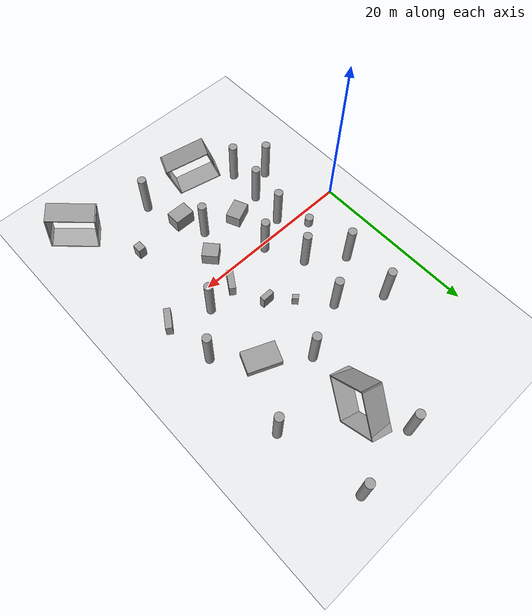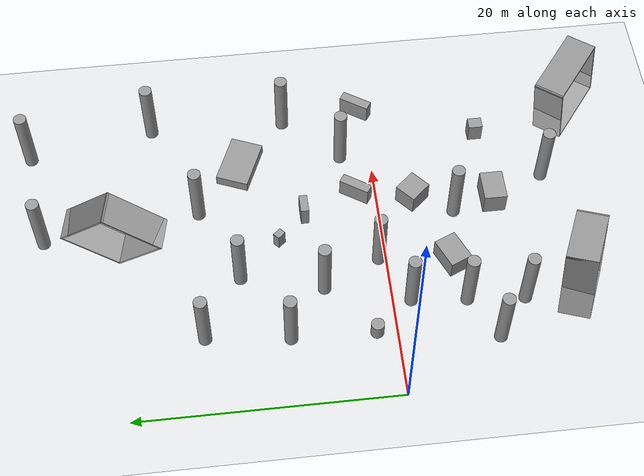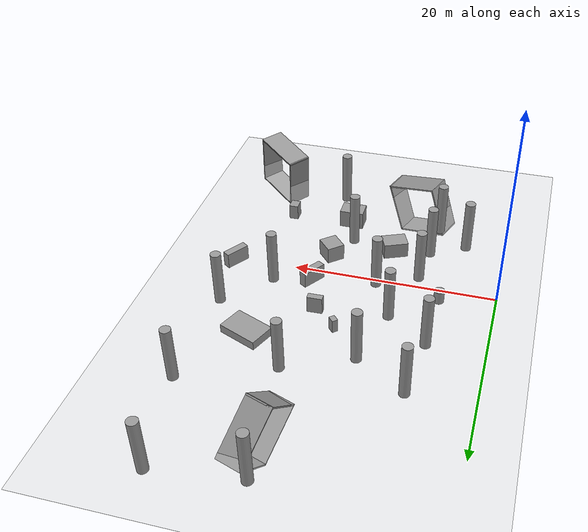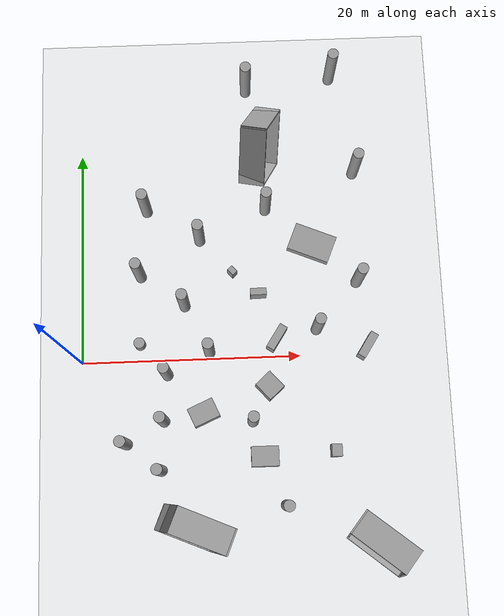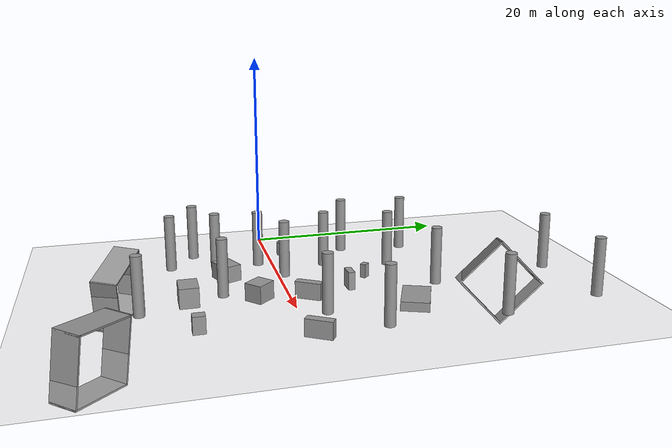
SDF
<sdf version="1.6">
 <world name="default">
  <model name="ground_plane">
   <static>1</static>
   <link name="link">
    <collision name="collision">
     <geometry><plane><normal>0 0 1</normal><size>100 100</size></plane></geometry>
     <surface><friction><ode><mu>100</mu><mu2>50</mu2></ode></friction></surface>
    </collision>
    <visual name="visual">
     <cast_shadows>0</cast_shadows>
     <geometry><plane><normal>0 0 1</normal><size>100 100</size></plane></geometry>
     <material>
      <script><uri>file://media/materials/scripts/gazebo.material</uri><name>Gazebo/Grey</name></script>
     </material>
    </visual>
   </link>
  </model>
  <model name="unit_cylinder">
   <pose>5.3177 1.52841 0.661765 0 -0 0.001729</pose>
   <link name="link">
    <inertial>
     <mass>1</mass>
     <inertia><ixx>0.145833</ixx><ixy>0</ixy><ixz>0</ixz><iyy>0.145833</iyy><iyz>0</iyz><izz>0.125</izz></inertia>
    </inertial>
    <collision name="collision">
     <geometry><cylinder><radius>0.5</radius><length>1.32353</length></cylinder></geometry>
    </collision>
    <visual name="visual">
     <geometry><cylinder><radius>0.5</radius><length>1.32353</length></cylinder></geometry>
     <material>
      <script><name>Gazebo/Grey</name><uri>file://media/materials/scripts/gazebo.material</uri></script>
     </material>
    </visual>
   </link>
  </model>
  <model name="unit_cylinder_clone_1">
   <pose>7.38389 -5.59554 2.75253 0 -0 0.004343</pose>
   <link name="link">
    <inertial>
     <mass>1</mass>
     <inertia><ixx>0.145833</ixx><ixy>0</ixy><ixz>0</ixz><iyy>0.145833</iyy><iyz>0</iyz><izz>0.125</izz></inertia>
    </inertial>
    <collision name="collision">
     <geometry><cylinder><radius>0.5</radius><length>5.50507</length></cylinder></geometry>
    </collision>
    <visual name="visual">
     <geometry><cylinder><radius>0.5</radius><length>5.50507</length></cylinder></geometry>
     <material>
      <script><name>Gazebo/Grey</name><uri>file://media/materials/scripts/gazebo.material</uri></script>
     </material>
    </visual>
   </link>
  </model>
  <model name="unit_cylinder_clone_2">
   <pose>9.49308 5.0003 2.75253 0 -0 0.004498</pose>
   <link name="link">
    <inertial>
     <mass>1</mass>
     <inertia><ixx>0.145833</ixx><ixy>0</ixy><ixz>0</ixz><iyy>0.145833</iyy><iyz>0</iyz><izz>0.125</izz></inertia>
    </inertial>
    <collision name="collision">
     <geometry><cylinder><radius>0.5</radius><length>5.50507</length></cylinder></geometry>
    </collision>
    <visual name="visual">
     <geometry><cylinder><radius>0.5</radius><length>5.50507</length></cylinder></geometry>
     <material>
      <script><name>Gazebo/Grey</name><uri>file://media/materials/scripts/gazebo.material</uri></script>
     </material>
    </visual>
   </link>
  </model>
  <model name="unit_cylinder_clone_3">
   <pose>7.77783 -1.37946 2.75253 0 -0 0.00474</pose>
   <link name="link">
    <inertial>
     <mass>1</mass>
     <inertia><ixx>0.145833</ixx><ixy>0</ixy><ixz>0</ixz><iyy>0.145833</iyy><iyz>0</iyz><izz>0.125</izz></inertia>
    </inertial>
    <collision name="collision">
     <geometry><cylinder><radius>0.5</radius><length>5.50507</length></cylinder></geometry>
    </collision>
    <visual name="visual">
     <geometry><cylinder><radius>0.5</radius><length>5.50507</length></cylinder></geometry>
     <material>
      <script><name>Gazebo/Grey</name><uri>file://media/materials/scripts/gazebo.material</uri></script>
     </material>
    </visual>
   </link>
  </model>
  <model name="unit_cylinder_clone_4">
   <pose>3.98651 -7.52504 2.75253 0 -0 0.004053</pose>
   <link name="link">
    <inertial>
     <mass>1</mass>
     <inertia><ixx>0.145833</ixx><ixy>0</ixy><ixz>0</ixz><iyy>0.145833</iyy><iyz>0</iyz><izz>0.125</izz></inertia>
    </inertial>
    <collision name="collision">
     <geometry><cylinder><radius>0.5</radius><length>5.50507</length></cylinder></geometry>
    </collision>
    <visual name="visual">
     <geometry><cylinder><radius>0.5</radius><length>5.50507</length></cylinder></geometry>
     <material>
      <script><name>Gazebo/Grey</name><uri>file://media/materials/scripts/gazebo.material</uri></script>
     </material>
    </visual>
   </link>
  </model>
  <model name="unit_cylinder_clone_5">
   <pose>5.48129 7.9192 2.75253 0 -0 0.004331</pose>
   <link name="link">
    <inertial>
     <mass>1</mass>
     <inertia><ixx>0.145833</ixx><ixy>0</ixy><ixz>0</ixz><iyy>0.145833</iyy><iyz>0</iyz><izz>0.125</izz></inertia>
    </inertial>
    <collision name="collision">
     <geometry><cylinder><radius>0.5</radius><length>5.50507</length></cylinder></geometry>
    </collision>
    <visual name="visual">
     <geometry><cylinder><radius>0.5</radius><length>5.50507</length></cylinder></geometry>
     <material>
      <script><name>Gazebo/Grey</name><uri>file://media/materials/scripts/gazebo.material</uri></script>
     </material>
    </visual>
   </link>
  </model>
  <model name="unit_cylinder_clone_6">
   <pose>7.07349 -9.96307 2.75253 0 -0 0.004298</pose>
   <link name="link">
    <inertial>
     <mass>1</mass>
     <inertia><ixx>0.145833</ixx><ixy>0</ixy><ixz>0</ixz><iyy>0.145833</iyy><iyz>0</iyz><izz>0.125</izz></inertia>
    </inertial>
    <collision name="collision">
     <geometry><cylinder><radius>0.5</radius><length>5.50507</length></cylinder></geometry>
    </collision>
    <visual name="visual">
     <geometry><cylinder><radius>0.5</radius><length>5.50507</length></cylinder></geometry>
     <material>
      <script><name>Gazebo/Grey</name><uri>file://media/materials/scripts/gazebo.material</uri></script>
     </material>
    </visual>
   </link>
  </model>
  <model name="unit_cylinder_clone_7">
   <pose>11.6635 0.575261 2.75253 0 -0 0.004485</pose>
   <link name="link">
    <inertial>
     <mass>1</mass>
     <inertia><ixx>0.145833</ixx><ixy>0</ixy><ixz>0</ixz><iyy>0.145833</iyy><iyz>0</iyz><izz>0.125</izz></inertia>
    </inertial>
    <collision name="collision">
     <geometry><cylinder><radius>0.5</radius><length>5.50507</length></cylinder></geometry>
    </collision>
    <visual name="visual">
     <geometry><cylinder><radius>0.5</radius><length>5.50507</length></cylinder></geometry>
     <material>
      <script><name>Gazebo/Grey</name><uri>file://media/materials/scripts/gazebo.material</uri></script>
     </material>
    </visual>
   </link>
  </model>
  <model name="unit_cylinder_clone_8">
   <pose>11.0383 11.2509 2.75253 0 -0 0.004416</pose>
   <link name="link">
    <inertial>
     <mass>1</mass>
     <inertia><ixx>0.145833</ixx><ixy>0</ixy><ixz>0</ixz><iyy>0.145833</iyy><iyz>0</iyz><izz>0.125</izz></inertia>
    </inertial>
    <collision name="collision">
     <geometry><cylinder><radius>0.5</radius><length>5.50507</length></cylinder></geometry>
    </collision>
    <visual name="visual">
     <geometry><cylinder><radius>0.5</radius><length>5.50507</length></cylinder></geometry>
     <material>
      <script><name>Gazebo/Grey</name><uri>file://media/materials/scripts/gazebo.material</uri></script>
     </material>
    </visual>
   </link>
  </model>
  <model name="unit_cylinder_clone_12">
   <pose>15.4123 -5.85656 2.75253 0 -0 0.004745</pose>
   <link name="link">
    <inertial>
     <mass>1</mass>
     <inertia><ixx>0.145833</ixx><ixy>0</ixy><ixz>0</ixz><iyy>0.145833</iyy><iyz>0</iyz><izz>0.125</izz></inertia>
    </inertial>
    <collision name="collision">
     <geometry><cylinder><radius>0.5</radius><length>5.50507</length></cylinder></geometry>
    </collision>
    <visual name="visual">
     <geometry><cylinder><radius>0.5</radius><length>5.50507</length></cylinder></geometry>
     <material>
      <script><name>Gazebo/Grey</name><uri>file://media/materials/scripts/gazebo.material</uri></script>
     </material>
    </visual>
   </link>
  </model>
  <model name="unit_box">
   <pose>13.9889 7.99618 0.67243 1e-06 -0 0.739122</pose>
   <link name="link">
    <inertial>
     <mass>1</mass>
     <inertia>
      <ixx>0.166667</ixx>
      <ixy>0</ixy>
      <ixz>0</ixz>
      <iyy>0.166667</iyy>
      <iyz>0</iyz>
      <izz>0.166667</izz>
     </inertia>
    </inertial>
    <collision name="collision"><geometry><box><size>0.564982 0.726007 1.34486</size></box></geometry></collision>
    <visual name="visual">
     <geometry><box><size>0.564982 0.726007 1.34486</size></box></geometry>
     <material>
      <script><name>Gazebo/Grey</name><uri>file://media/materials/scripts/gazebo.material</uri></script>
     </material>
    </visual>
   </link>
  </model>
  <model name="unit_box_clone">
   <pose>11 -5.00016 0.78823 -4e-06 0 -1.1578</pose>
   <link name="link">
    <inertial>
     <mass>1</mass>
     <inertia>
      <ixx>0.166667</ixx>
      <ixy>0</ixy>
      <ixz>0</ixz>
      <iyy>0.166667</iyy>
      <iyz>0</iyz>
      <izz>0.166667</izz>
     </inertia>
    </inertial>
    <collision name="collision"><geometry><box><size>1.76997 2.44518 1.57647</size></box></geometry></collision>
    <visual name="visual">
     <geometry><box><size>1.76997 2.44518 1.57647</size></box></geometry>
     <material>
      <script><name>Gazebo/Grey</name><uri>file://media/materials/scripts/gazebo.material</uri></script>
     </material>
    </visual>
   </link>
  </model>
  <model name="unit_box_clone_0">
   <pose>17.0265 -2.7958 0.841035 -5e-06 -0 0.728675</pose>
   <link name="link">
    <inertial>
     <mass>1</mass>
     <inertia>
      <ixx>0.166667</ixx>
      <ixy>0</ixy>
      <ixz>0</ixz>
      <iyy>0.166667</iyy>
      <iyz>0</iyz>
      <izz>0.166667</izz>
     </inertia>
    </inertial>
    <collision name="collision"><geometry><box><size>1.76997 1.92154 1.68208</size></box></geometry></collision>
    <visual name="visual">
     <geometry><box><size>1.76997 1.92154 1.68208</size></box></geometry>
     <material>
      <script><name>Gazebo/Grey</name><uri>file://media/materials/scripts/gazebo.material</uri></script>
     </material>
    </visual>
   </link>
  </model>
  <model name="unit_box_clone_1">
   <pose>16.3355 -9.0602 0.926305 0 -0 1.57085</pose>
   <link name="link">
    <inertial>
     <mass>1</mass>
     <inertia>
      <ixx>0.166667</ixx>
      <ixy>0</ixy>
      <ixz>0</ixz>
      <iyy>0.166667</iyy>
      <iyz>0</iyz>
      <izz>0.166667</izz>
     </inertia>
    </inertial>
    <collision name="collision"><geometry><box><size>1.76997 2.44518 1.85261</size></box></geometry></collision>
    <visual name="visual">
     <geometry><box><size>1.76997 2.44518 1.85261</size></box></geometry>
     <material>
      <script><name>Gazebo/Grey</name><uri>file://media/materials/scripts/gazebo.material</uri></script>
     </material>
    </visual>
   </link>
  </model>
  <model name="unit_box_clone_0_clone">
   <pose>21.5162 10.5077 0.430373 1.55805 -1.57079 -1.95161</pose>
   <link name="link">
    <inertial>
     <mass>1</mass>
     <inertia>
      <ixx>0.166667</ixx>
      <ixy>0</ixy>
      <ixz>0</ixz>
      <iyy>0.166667</iyy>
      <iyz>0</iyz>
      <izz>0.166667</izz>
     </inertia>
    </inertial>
    <collision name="collision"><geometry><box><size>0.860775 2.57296 3.98743</size></box></geometry></collision>
    <visual name="visual">
     <geometry><box><size>0.860775 2.57296 3.98743</size></box></geometry>
     <material>
      <script><name>Gazebo/Grey</name><uri>file://media/materials/scripts/gazebo.material</uri></script>
     </material>
    </visual>
   </link>
  </model>
  <model name="unit_box_0">
   <pose>16.3175 5.84891 0.859719 0 7e-06 0.022308</pose>
   <link name="link">
    <inertial>
     <mass>1</mass>
     <inertia>
      <ixx>0.166667</ixx>
      <ixy>0</ixy>
      <ixz>0</ixz>
      <iyy>0.166667</iyy>
      <iyz>0</iyz>
      <izz>0.166667</izz>
     </inertia>
    </inertial>
    <collision name="collision"><geometry><box><size>1.47389 0.631413 1.71945</size></box></geometry></collision>
    <visual name="visual">
     <geometry><box><size>1.47389 0.631413 1.71945</size></box></geometry>
     <material>
      <script><name>Gazebo/Grey</name><uri>file://media/materials/scripts/gazebo.material</uri></script>
     </material>
    </visual>
   </link>
  </model>
  <model name="unit_box_clone_clone">
   <pose>26.0947 0.596068 0.788231 -4e-06 -0 -0.576118</pose>
   <link name="link">
    <inertial>
     <mass>1</mass>
     <inertia>
      <ixx>0.166667</ixx>
      <ixy>0</ixy>
      <ixz>0</ixz>
      <iyy>0.166667</iyy>
      <iyz>0</iyz>
      <izz>0.166667</izz>
     </inertia>
    </inertial>
    <collision name="collision"><geometry><box><size>0.770315 2.44518 1.57647</size></box></geometry></collision>
    <visual name="visual">
     <geometry><box><size>0.770315 2.44518 1.57647</size></box></geometry>
     <material>
      <script><name>Gazebo/Grey</name><uri>file://media/materials/scripts/gazebo.material</uri></script>
     </material>
    </visual>
   </link>
  </model>
  <model name="unit_box_clone_clone_0">
   <pose>22.7327 -8.74636 0.788235 0 -0 0.001396</pose>
   <link name="link">
    <inertial>
     <mass>1</mass>
     <inertia>
      <ixx>0.166667</ixx>
      <ixy>0</ixy>
      <ixz>0</ixz>
      <iyy>0.166667</iyy>
      <iyz>0</iyz>
      <izz>0.166667</izz>
     </inertia>
    </inertial>
    <collision name="collision"><geometry><box><size>0.926366 1.10204 1.57647</size></box></geometry></collision>
    <visual name="visual">
     <geometry><box><size>0.926366 1.10204 1.57647</size></box></geometry>
     <material>
      <script><name>Gazebo/Grey</name><uri>file://media/materials/scripts/gazebo.material</uri></script>
     </material>
    </visual>
   </link>
  </model>
  <model name="unit_cylinder_clone_7_clone_0">
   <pose>25.5021 6.72855 2.75253 0 -0 0.004488</pose>
   <link name="link">
    <inertial>
     <mass>1</mass>
     <inertia><ixx>0.145833</ixx><ixy>0</ixy><ixz>0</ixz><iyy>0.145833</iyy><iyz>0</iyz><izz>0.125</izz></inertia>
    </inertial>
    <collision name="collision">
     <geometry><cylinder><radius>0.5</radius><length>5.50507</length></cylinder></geometry>
    </collision>
    <visual name="visual">
     <geometry><cylinder><radius>0.5</radius><length>5.50507</length></cylinder></geometry>
     <material>
      <script><name>Gazebo/Grey</name><uri>file://media/materials/scripts/gazebo.material</uri></script>
     </material>
    </visual>
   </link>
  </model>
  <model name="unit_cylinder_clone_7_clone_1">
   <pose>21.564 2.39876 2.75253 0 -0 0.006125</pose>
   <link name="link">
    <inertial>
     <mass>1</mass>
     <inertia><ixx>0.145833</ixx><ixy>0</ixy><ixz>0</ixz><iyy>0.145833</iyy><iyz>0</iyz><izz>0.125</izz></inertia>
    </inertial>
    <collision name="collision">
     <geometry><cylinder><radius>0.5</radius><length>5.50507</length></cylinder></geometry>
    </collision>
    <visual name="visual">
     <geometry><cylinder><radius>0.5</radius><length>5.50507</length></cylinder></geometry>
     <material>
      <script><name>Gazebo/Grey</name><uri>file://media/materials/scripts/gazebo.material</uri></script>
     </material>
    </visual>
   </link>
  </model>
  <model name="unit_cylinder_clone_7_clone_2">
   <pose>17.2791 14.0466 2.75253 0 -0 0.00434</pose>
   <link name="link">
    <inertial>
     <mass>1</mass>
     <inertia><ixx>0.145833</ixx><ixy>0</ixy><ixz>0</ixz><iyy>0.145833</iyy><iyz>0</iyz><izz>0.125</izz></inertia>
    </inertial>
    <collision name="collision">
     <geometry><cylinder><radius>0.5</radius><length>5.50507</length></cylinder></geometry>
    </collision>
    <visual name="visual">
     <geometry><cylinder><radius>0.5</radius><length>5.50507</length></cylinder></geometry>
     <material>
      <script><name>Gazebo/Grey</name><uri>file://media/materials/scripts/gazebo.material</uri></script>
     </material>
    </visual>
   </link>
  </model>
  <model name="unit_cylinder_clone_7_clone_3">
   <pose>18.1053 -13.3671 2.75253 0 -0 0.004413</pose>
   <link name="link">
    <inertial>
     <mass>1</mass>
     <inertia><ixx>0.145833</ixx><ixy>0</ixy><ixz>0</ixz><iyy>0.145833</iyy><iyz>0</iyz><izz>0.125</izz></inertia>
    </inertial>
    <collision name="collision">
     <geometry><cylinder><radius>0.5</radius><length>5.50507</length></cylinder></geometry>
    </collision>
    <visual name="visual">
     <geometry><cylinder><radius>0.5</radius><length>5.50507</length></cylinder></geometry>
     <material>
      <script><name>Gazebo/Grey</name><uri>file://media/materials/scripts/gazebo.material</uri></script>
     </material>
    </visual>
   </link>
  </model>
  <model name="vRoom_clone_3_clone_clone_9_clone_0">
   <link name="Wall_0">
    <pose>-2.8 -0 -1e-06 -0 -0 -1.5708</pose>
    <velocity_decay><linear>0</linear><angular>0</angular></velocity_decay>
    <visual name="Wall_0_Visual">
     <pose>0 0 1.25 0 -0 0</pose>
     <geometry><box><size>5.75 0.15 2.5</size></box></geometry>
     <material>
      <script><uri>file://media/materials/scripts/gazebo.material</uri><name>Gazebo/Grey</name></script>
      <ambient>1 1 1 1</ambient>
     </material>
    </visual>
    <collision name="Wall_0_Collision">
     <pose>0 0 1.25 0 -0 0</pose>
     <geometry><box><size>5.75 0.15 2.5</size></box></geometry>
     <surface>
      <friction>
       <ode><mu>1</mu><mu2>1</mu2><fdir1>0 0 0</fdir1><slip1>0</slip1><slip2>0</slip2></ode>
       <torsional>
        <coefficient>1</coefficient>
        <patch_radius>0</patch_radius>
        <surface_radius>0</surface_radius>
        <use_patch_radius>1</use_patch_radius>
        <ode><slip>0</slip></ode>
       </torsional>
      </friction>
      <bounce><restitution_coefficient>0</restitution_coefficient><threshold>1e+06</threshold></bounce>
      <contact>
       <collide_without_contact>0</collide_without_contact>
       <collide_without_contact_bitmask>1</collide_without_contact_bitmask>
       <collide_bitmask>1</collide_bitmask>
       <ode>
        <soft_cfm>0</soft_cfm>
        <soft_erp>0.2</soft_erp>
        <kp>1e+13</kp>
        <kd>1</kd>
        <max_vel>0.01</max_vel>
        <min_depth>0</min_depth>
       </ode>
       <bullet>
        <split_impulse>1</split_impulse>
        <split_impulse_penetration_threshold>-0.01</split_impulse_penetration_threshold>
        <soft_cfm>0</soft_cfm>
        <soft_erp>0.2</soft_erp>
        <kp>1e+13</kp>
        <kd>1</kd>
       </bullet>
      </contact>
     </surface>
    </collision>
   </link>
   <link name="Wall_1">
    <pose>2e-06 -2.8 2e-06 0 -0 0</pose>
    <velocity_decay><linear>0</linear><angular>0</angular></velocity_decay>
    <visual name="Wall_1_Visual">
     <pose>0 0 1.25 0 -0 0</pose>
     <geometry><box><size>5.75 0.15 2.5</size></box></geometry>
     <material>
      <script><uri>file://media/materials/scripts/gazebo.material</uri><name>Gazebo/Grey</name></script>
      <ambient>1 1 1 1</ambient>
     </material>
    </visual>
    <collision name="Wall_1_Collision">
     <pose>0 0 1.25 0 -0 0</pose>
     <geometry><box><size>5.75 0.15 2.5</size></box></geometry>
     <surface>
      <friction>
       <ode><mu>1</mu><mu2>1</mu2><fdir1>0 0 0</fdir1><slip1>0</slip1><slip2>0</slip2></ode>
       <torsional>
        <coefficient>1</coefficient>
        <patch_radius>0</patch_radius>
        <surface_radius>0</surface_radius>
        <use_patch_radius>1</use_patch_radius>
        <ode><slip>0</slip></ode>
       </torsional>
      </friction>
      <bounce><restitution_coefficient>0</restitution_coefficient><threshold>1e+06</threshold></bounce>
      <contact>
       <collide_without_contact>0</collide_without_contact>
       <collide_without_contact_bitmask>1</collide_without_contact_bitmask>
       <collide_bitmask>1</collide_bitmask>
       <ode>
        <soft_cfm>0</soft_cfm>
        <soft_erp>0.2</soft_erp>
        <kp>1e+13</kp>
        <kd>1</kd>
        <max_vel>0.01</max_vel>
        <min_depth>0</min_depth>
       </ode>
       <bullet>
        <split_impulse>1</split_impulse>
        <split_impulse_penetration_threshold>-0.01</split_impulse_penetration_threshold>
        <soft_cfm>0</soft_cfm>
        <soft_erp>0.2</soft_erp>
        <kp>1e+13</kp>
        <kd>1</kd>
       </bullet>
      </contact>
     </surface>
    </collision>
   </link>
   <link name="Wall_2">
    <pose>2.8 0 1e-06 0 -0 1.5708</pose>
    <velocity_decay><linear>0</linear><angular>0</angular></velocity_decay>
    <visual name="Wall_2_Visual">
     <pose>0 0 1.25 0 -0 0</pose>
     <geometry><box><size>5.75 0.15 2.5</size></box></geometry>
     <material>
      <script><uri>file://media/materials/scripts/gazebo.material</uri><name>Gazebo/Grey</name></script>
      <ambient>1 1 1 1</ambient>
     </material>
    </visual>
    <collision name="Wall_2_Collision">
     <pose>0 0 1.25 0 -0 0</pose>
     <geometry><box><size>5.75 0.15 2.5</size></box></geometry>
     <surface>
      <friction>
       <ode><mu>1</mu><mu2>1</mu2><fdir1>0 0 0</fdir1><slip1>0</slip1><slip2>0</slip2></ode>
       <torsional>
        <coefficient>1</coefficient>
        <patch_radius>0</patch_radius>
        <surface_radius>0</surface_radius>
        <use_patch_radius>1</use_patch_radius>
        <ode><slip>0</slip></ode>
       </torsional>
      </friction>
      <bounce><restitution_coefficient>0</restitution_coefficient><threshold>1e+06</threshold></bounce>
      <contact>
       <collide_without_contact>0</collide_without_contact>
       <collide_without_contact_bitmask>1</collide_without_contact_bitmask>
       <collide_bitmask>1</collide_bitmask>
       <ode>
        <soft_cfm>0</soft_cfm>
        <soft_erp>0.2</soft_erp>
        <kp>1e+13</kp>
        <kd>1</kd>
        <max_vel>0.01</max_vel>
        <min_depth>0</min_depth>
       </ode>
       <bullet>
        <split_impulse>1</split_impulse>
        <split_impulse_penetration_threshold>-0.01</split_impulse_penetration_threshold>
        <soft_cfm>0</soft_cfm>
        <soft_erp>0.2</soft_erp>
        <kp>1e+13</kp>
        <kd>1</kd>
       </bullet>
      </contact>
     </surface>
    </collision>
   </link>
   <link name="Wall_3">
    <pose>-2e-06 2.8 -2e-06 0 -0 3.14159</pose>
    <velocity_decay><linear>0</linear><angular>0</angular></velocity_decay>
    <visual name="Wall_3_Visual">
     <pose>0 0 1.25 0 -0 0</pose>
     <geometry><box><size>5.75 0.15 2.5</size></box></geometry>
     <material>
      <script><uri>file://media/materials/scripts/gazebo.material</uri><name>Gazebo/Grey</name></script>
      <ambient>1 1 1 1</ambient>
     </material>
    </visual>
    <collision name="Wall_3_Collision">
     <pose>0 0 1.25 0 -0 0</pose>
     <geometry><box><size>5.75 0.15 2.5</size></box></geometry>
     <surface>
      <friction>
       <ode><mu>1</mu><mu2>1</mu2><fdir1>0 0 0</fdir1><slip1>0</slip1><slip2>0</slip2></ode>
       <torsional>
        <coefficient>1</coefficient>
        <patch_radius>0</patch_radius>
        <surface_radius>0</surface_radius>
        <use_patch_radius>1</use_patch_radius>
        <ode><slip>0</slip></ode>
       </torsional>
      </friction>
      <bounce><restitution_coefficient>0</restitution_coefficient><threshold>1e+06</threshold></bounce>
      <contact>
       <collide_without_contact>0</collide_without_contact>
       <collide_without_contact_bitmask>1</collide_without_contact_bitmask>
       <collide_bitmask>1</collide_bitmask>
       <ode>
        <soft_cfm>0</soft_cfm>
        <soft_erp>0.2</soft_erp>
        <kp>1e+13</kp>
        <kd>1</kd>
        <max_vel>0.01</max_vel>
        <min_depth>0</min_depth>
       </ode>
       <bullet>
        <split_impulse>1</split_impulse>
        <split_impulse_penetration_threshold>-0.01</split_impulse_penetration_threshold>
        <soft_cfm>0</soft_cfm>
        <soft_erp>0.2</soft_erp>
        <kp>1e+13</kp>
        <kd>1</kd>
       </bullet>
      </contact>
     </surface>
    </collision>
   </link>
   <static>1</static>
   <pose>27.2029 -16.0391 0.534522 -1.11103 -1.4406 1.99895</pose>
  </model>
  <model name="unit_cylinder_clone_7_clone_1_clone_2">
   <pose>25.753 17.391 2.75253 0 -0 0.004443</pose>
   <link name="link">
    <inertial>
     <mass>1</mass>
     <inertia><ixx>0.145833</ixx><ixy>0</ixy><ixz>0</ixz><iyy>0.145833</iyy><iyz>0</iyz><izz>0.125</izz></inertia>
    </inertial>
    <collision name="collision">
     <geometry><cylinder><radius>0.5</radius><length>5.50507</length></cylinder></geometry>
    </collision>
    <visual name="visual">
     <geometry><cylinder><radius>0.5</radius><length>5.50507</length></cylinder></geometry>
     <material>
      <script><name>Gazebo/Grey</name><uri>file://media/materials/scripts/gazebo.material</uri></script>
     </material>
    </visual>
   </link>
  </model>
  <model name="vRoom_clone_3_clone_clone_9_clone_clone_clone_0">
   <link name="Wall_0">
    <pose>-2.8 -0 -1e-06 -0 -0 -1.5708</pose>
    <velocity_decay><linear>0</linear><angular>0</angular></velocity_decay>
    <visual name="Wall_0_Visual">
     <pose>0 0 1.25 0 -0 0</pose>
     <geometry><box><size>5.75 0.15 2.5</size></box></geometry>
     <material>
      <script><uri>file://media/materials/scripts/gazebo.material</uri><name>Gazebo/Grey</name></script>
      <ambient>1 1 1 1</ambient>
     </material>
    </visual>
    <collision name="Wall_0_Collision">
     <pose>0 0 1.25 0 -0 0</pose>
     <geometry><box><size>5.75 0.15 2.5</size></box></geometry>
     <surface>
      <friction>
       <ode><mu>1</mu><mu2>1</mu2><fdir1>0 0 0</fdir1><slip1>0</slip1><slip2>0</slip2></ode>
       <torsional>
        <coefficient>1</coefficient>
        <patch_radius>0</patch_radius>
        <surface_radius>0</surface_radius>
        <use_patch_radius>1</use_patch_radius>
        <ode><slip>0</slip></ode>
       </torsional>
      </friction>
      <bounce><restitution_coefficient>0</restitution_coefficient><threshold>1e+06</threshold></bounce>
      <contact>
       <collide_without_contact>0</collide_without_contact>
       <collide_without_contact_bitmask>1</collide_without_contact_bitmask>
       <collide_bitmask>1</collide_bitmask>
       <ode>
        <soft_cfm>0</soft_cfm>
        <soft_erp>0.2</soft_erp>
        <kp>1e+13</kp>
        <kd>1</kd>
        <max_vel>0.01</max_vel>
        <min_depth>0</min_depth>
       </ode>
       <bullet>
        <split_impulse>1</split_impulse>
        <split_impulse_penetration_threshold>-0.01</split_impulse_penetration_threshold>
        <soft_cfm>0</soft_cfm>
        <soft_erp>0.2</soft_erp>
        <kp>1e+13</kp>
        <kd>1</kd>
       </bullet>
      </contact>
     </surface>
    </collision>
   </link>
   <link name="Wall_1">
    <pose>2e-06 -2.8 2e-06 0 -0 0</pose>
    <velocity_decay><linear>0</linear><angular>0</angular></velocity_decay>
    <visual name="Wall_1_Visual">
     <pose>0 0 1.25 0 -0 0</pose>
     <geometry><box><size>5.75 0.15 2.5</size></box></geometry>
     <material>
      <script><uri>file://media/materials/scripts/gazebo.material</uri><name>Gazebo/Grey</name></script>
      <ambient>1 1 1 1</ambient>
     </material>
    </visual>
    <collision name="Wall_1_Collision">
     <pose>0 0 1.25 0 -0 0</pose>
     <geometry><box><size>5.75 0.15 2.5</size></box></geometry>
     <surface>
      <friction>
       <ode><mu>1</mu><mu2>1</mu2><fdir1>0 0 0</fdir1><slip1>0</slip1><slip2>0</slip2></ode>
       <torsional>
        <coefficient>1</coefficient>
        <patch_radius>0</patch_radius>
        <surface_radius>0</surface_radius>
        <use_patch_radius>1</use_patch_radius>
        <ode><slip>0</slip></ode>
       </torsional>
      </friction>
      <bounce><restitution_coefficient>0</restitution_coefficient><threshold>1e+06</threshold></bounce>
      <contact>
       <collide_without_contact>0</collide_without_contact>
       <collide_without_contact_bitmask>1</collide_without_contact_bitmask>
       <collide_bitmask>1</collide_bitmask>
       <ode>
        <soft_cfm>0</soft_cfm>
        <soft_erp>0.2</soft_erp>
        <kp>1e+13</kp>
        <kd>1</kd>
        <max_vel>0.01</max_vel>
        <min_depth>0</min_depth>
       </ode>
       <bullet>
        <split_impulse>1</split_impulse>
        <split_impulse_penetration_threshold>-0.01</split_impulse_penetration_threshold>
        <soft_cfm>0</soft_cfm>
        <soft_erp>0.2</soft_erp>
        <kp>1e+13</kp>
        <kd>1</kd>
       </bullet>
      </contact>
     </surface>
    </collision>
   </link>
   <link name="Wall_2">
    <pose>2.8 0 1e-06 0 -0 1.5708</pose>
    <velocity_decay><linear>0</linear><angular>0</angular></velocity_decay>
    <visual name="Wall_2_Visual">
     <pose>0 0 1.25 0 -0 0</pose>
     <geometry><box><size>5.75 0.15 2.5</size></box></geometry>
     <material>
      <script><uri>file://media/materials/scripts/gazebo.material</uri><name>Gazebo/Grey</name></script>
      <ambient>1 1 1 1</ambient>
     </material>
    </visual>
    <collision name="Wall_2_Collision">
     <pose>0 0 1.25 0 -0 0</pose>
     <geometry><box><size>5.75 0.15 2.5</size></box></geometry>
     <surface>
      <friction>
       <ode><mu>1</mu><mu2>1</mu2><fdir1>0 0 0</fdir1><slip1>0</slip1><slip2>0</slip2></ode>
       <torsional>
        <coefficient>1</coefficient>
        <patch_radius>0</patch_radius>
        <surface_radius>0</surface_radius>
        <use_patch_radius>1</use_patch_radius>
        <ode><slip>0</slip></ode>
       </torsional>
      </friction>
      <bounce><restitution_coefficient>0</restitution_coefficient><threshold>1e+06</threshold></bounce>
      <contact>
       <collide_without_contact>0</collide_without_contact>
       <collide_without_contact_bitmask>1</collide_without_contact_bitmask>
       <collide_bitmask>1</collide_bitmask>
       <ode>
        <soft_cfm>0</soft_cfm>
        <soft_erp>0.2</soft_erp>
        <kp>1e+13</kp>
        <kd>1</kd>
        <max_vel>0.01</max_vel>
        <min_depth>0</min_depth>
       </ode>
       <bullet>
        <split_impulse>1</split_impulse>
        <split_impulse_penetration_threshold>-0.01</split_impulse_penetration_threshold>
        <soft_cfm>0</soft_cfm>
        <soft_erp>0.2</soft_erp>
        <kp>1e+13</kp>
        <kd>1</kd>
       </bullet>
      </contact>
     </surface>
    </collision>
   </link>
   <link name="Wall_3">
    <pose>-2e-06 2.8 -2e-06 0 -0 3.14159</pose>
    <velocity_decay><linear>0</linear><angular>0</angular></velocity_decay>
    <visual name="Wall_3_Visual">
     <pose>0 0 1.25 0 -0 0</pose>
     <geometry><box><size>5.75 0.15 2.5</size></box></geometry>
     <material>
      <script><uri>file://media/materials/scripts/gazebo.material</uri><name>Gazebo/Grey</name></script>
      <ambient>1 1 1 1</ambient>
     </material>
    </visual>
    <collision name="Wall_3_Collision">
     <pose>0 0 1.25 0 -0 0</pose>
     <geometry><box><size>5.75 0.15 2.5</size></box></geometry>
     <surface>
      <friction>
       <ode><mu>1</mu><mu2>1</mu2><fdir1>0 0 0</fdir1><slip1>0</slip1><slip2>0</slip2></ode>
       <torsional>
        <coefficient>1</coefficient>
        <patch_radius>0</patch_radius>
        <surface_radius>0</surface_radius>
        <use_patch_radius>1</use_patch_radius>
        <ode><slip>0</slip></ode>
       </torsional>
      </friction>
      <bounce><restitution_coefficient>0</restitution_coefficient><threshold>1e+06</threshold></bounce>
      <contact>
       <collide_without_contact>0</collide_without_contact>
       <collide_without_contact_bitmask>1</collide_without_contact_bitmask>
       <collide_bitmask>1</collide_bitmask>
       <ode>
        <soft_cfm>0</soft_cfm>
        <soft_erp>0.2</soft_erp>
        <kp>1e+13</kp>
        <kd>1</kd>
        <max_vel>0.01</max_vel>
        <min_depth>0</min_depth>
       </ode>
       <bullet>
        <split_impulse>1</split_impulse>
        <split_impulse_penetration_threshold>-0.01</split_impulse_penetration_threshold>
        <soft_cfm>0</soft_cfm>
        <soft_erp>0.2</soft_erp>
        <kp>1e+13</kp>
        <kd>1</kd>
       </bullet>
      </contact>
     </surface>
    </collision>
   </link>
   <static>1</static>
   <pose>10.3169 -14.0406 -0.670588 -1.2564 1.2786 3.05373</pose>
  </model>
  <model name="unit_box_clone_clone_clone">
   <pose>17.8465 1.5992 0.788231 -4e-06 -0 -0.576582</pose>
   <link name="link">
    <inertial>
     <mass>1</mass>
     <inertia>
      <ixx>0.166667</ixx>
      <ixy>0</ixy>
      <ixz>0</ixz>
      <iyy>0.166667</iyy>
      <iyz>0</iyz>
      <izz>0.166667</izz>
     </inertia>
    </inertial>
    <collision name="collision"><geometry><box><size>0.770315 2.44518 1.57647</size></box></geometry></collision>
    <visual name="visual">
     <geometry><box><size>0.770315 2.44518 1.57647</size></box></geometry>
     <material>
      <script><name>Gazebo/Grey</name><uri>file://media/materials/scripts/gazebo.material</uri></script>
     </material>
    </visual>
   </link>
  </model>
  <model name="unit_cylinder_clone_7_clone_2_clone">
   <pose>24.0009 27.153 2.75253 0 -0 0.004474</pose>
   <link name="link">
    <inertial>
     <mass>1</mass>
     <inertia><ixx>0.145833</ixx><ixy>0</ixy><ixz>0</ixz><iyy>0.145833</iyy><iyz>0</iyz><izz>0.125</izz></inertia>
    </inertial>
    <collision name="collision">
     <geometry><cylinder><radius>0.5</radius><length>5.50507</length></cylinder></geometry>
    </collision>
    <visual name="visual">
     <geometry><cylinder><radius>0.5</radius><length>5.50507</length></cylinder></geometry>
     <material>
      <script><name>Gazebo/Grey</name><uri>file://media/materials/scripts/gazebo.material</uri></script>
     </material>
    </visual>
   </link>
  </model>
  <model name="unit_cylinder_clone_7_clone_2_clone_1">
   <pose>15.8583 26.1363 2.75253 0 -0 0.004347</pose>
   <link name="link">
    <inertial>
     <mass>1</mass>
     <inertia><ixx>0.145833</ixx><ixy>0</ixy><ixz>0</ixz><iyy>0.145833</iyy><iyz>0</iyz><izz>0.125</izz></inertia>
    </inertial>
    <collision name="collision">
     <geometry><cylinder><radius>0.5</radius><length>5.50507</length></cylinder></geometry>
    </collision>
    <visual name="visual">
     <geometry><cylinder><radius>0.5</radius><length>5.50507</length></cylinder></geometry>
     <material>
      <script><name>Gazebo/Grey</name><uri>file://media/materials/scripts/gazebo.material</uri></script>
     </material>
    </visual>
   </link>
  </model>
  <model name="unit_cylinder_clone_8_clone">
   <pose>6.13298 14.2539 2.75253 0 -0 0.004653</pose>
   <link name="link">
    <inertial>
     <mass>1</mass>
     <inertia><ixx>0.145833</ixx><ixy>0</ixy><ixz>0</ixz><iyy>0.145833</iyy><iyz>0</iyz><izz>0.125</izz></inertia>
    </inertial>
    <collision name="collision">
     <geometry><cylinder><radius>0.5</radius><length>5.50507</length></cylinder></geometry>
    </collision>
    <visual name="visual">
     <geometry><cylinder><radius>0.5</radius><length>5.50507</length></cylinder></geometry>
     <material>
      <script><name>Gazebo/Grey</name><uri>file://media/materials/scripts/gazebo.material</uri></script>
     </material>
    </visual>
   </link>
  </model>
  <model name="vRoom_clone_3_clone_clone_9_clone_2_clone">
   <link name="Wall_0">
    <pose>-2.8 -0 -1e-06 -0 -0 -1.5708</pose>
    <velocity_decay><linear>0</linear><angular>0</angular></velocity_decay>
    <visual name="Wall_0_Visual">
     <pose>0 0 1.25 0 -0 0</pose>
     <geometry><box><size>5.75 0.15 2.5</size></box></geometry>
     <material>
      <script><uri>file://media/materials/scripts/gazebo.material</uri><name>Gazebo/Grey</name></script>
      <ambient>1 1 1 1</ambient>
     </material>
    </visual>
    <collision name="Wall_0_Collision">
     <pose>0 0 1.25 0 -0 0</pose>
     <geometry><box><size>5.75 0.15 2.5</size></box></geometry>
     <surface>
      <friction>
       <ode><mu>1</mu><mu2>1</mu2><fdir1>0 0 0</fdir1><slip1>0</slip1><slip2>0</slip2></ode>
       <torsional>
        <coefficient>1</coefficient>
        <patch_radius>0</patch_radius>
        <surface_radius>0</surface_radius>
        <use_patch_radius>1</use_patch_radius>
        <ode><slip>0</slip></ode>
       </torsional>
      </friction>
      <bounce><restitution_coefficient>0</restitution_coefficient><threshold>1e+06</threshold></bounce>
      <contact>
       <collide_without_contact>0</collide_without_contact>
       <collide_without_contact_bitmask>1</collide_without_contact_bitmask>
       <collide_bitmask>1</collide_bitmask>
       <ode>
        <soft_cfm>0</soft_cfm>
        <soft_erp>0.2</soft_erp>
        <kp>1e+13</kp>
        <kd>1</kd>
        <max_vel>0.01</max_vel>
        <min_depth>0</min_depth>
       </ode>
       <bullet>
        <split_impulse>1</split_impulse>
        <split_impulse_penetration_threshold>-0.01</split_impulse_penetration_threshold>
        <soft_cfm>0</soft_cfm>
        <soft_erp>0.2</soft_erp>
        <kp>1e+13</kp>
        <kd>1</kd>
       </bullet>
      </contact>
     </surface>
    </collision>
   </link>
   <link name="Wall_1">
    <pose>2e-06 -2.8 2e-06 0 -0 0</pose>
    <velocity_decay><linear>0</linear><angular>0</angular></velocity_decay>
    <visual name="Wall_1_Visual">
     <pose>0 0 1.25 0 -0 0</pose>
     <geometry><box><size>5.75 0.15 2.5</size></box></geometry>
     <material>
      <script><uri>file://media/materials/scripts/gazebo.material</uri><name>Gazebo/Grey</name></script>
      <ambient>1 1 1 1</ambient>
     </material>
    </visual>
    <collision name="Wall_1_Collision">
     <pose>0 0 1.25 0 -0 0</pose>
     <geometry><box><size>5.75 0.15 2.5</size></box></geometry>
     <surface>
      <friction>
       <ode><mu>1</mu><mu2>1</mu2><fdir1>0 0 0</fdir1><slip1>0</slip1><slip2>0</slip2></ode>
       <torsional>
        <coefficient>1</coefficient>
        <patch_radius>0</patch_radius>
        <surface_radius>0</surface_radius>
        <use_patch_radius>1</use_patch_radius>
        <ode><slip>0</slip></ode>
       </torsional>
      </friction>
      <bounce><restitution_coefficient>0</restitution_coefficient><threshold>1e+06</threshold></bounce>
      <contact>
       <collide_without_contact>0</collide_without_contact>
       <collide_without_contact_bitmask>1</collide_without_contact_bitmask>
       <collide_bitmask>1</collide_bitmask>
       <ode>
        <soft_cfm>0</soft_cfm>
        <soft_erp>0.2</soft_erp>
        <kp>1e+13</kp>
        <kd>1</kd>
        <max_vel>0.01</max_vel>
        <min_depth>0</min_depth>
       </ode>
       <bullet>
        <split_impulse>1</split_impulse>
        <split_impulse_penetration_threshold>-0.01</split_impulse_penetration_threshold>
        <soft_cfm>0</soft_cfm>
        <soft_erp>0.2</soft_erp>
        <kp>1e+13</kp>
        <kd>1</kd>
       </bullet>
      </contact>
     </surface>
    </collision>
   </link>
   <link name="Wall_2">
    <pose>2.8 0 1e-06 0 -0 1.5708</pose>
    <velocity_decay><linear>0</linear><angular>0</angular></velocity_decay>
    <visual name="Wall_2_Visual">
     <pose>0 0 1.25 0 -0 0</pose>
     <geometry><box><size>5.75 0.15 2.5</size></box></geometry>
     <material>
      <script><uri>file://media/materials/scripts/gazebo.material</uri><name>Gazebo/Grey</name></script>
      <ambient>1 1 1 1</ambient>
     </material>
    </visual>
    <collision name="Wall_2_Collision">
     <pose>0 0 1.25 0 -0 0</pose>
     <geometry><box><size>5.75 0.15 2.5</size></box></geometry>
     <surface>
      <friction>
       <ode><mu>1</mu><mu2>1</mu2><fdir1>0 0 0</fdir1><slip1>0</slip1><slip2>0</slip2></ode>
       <torsional>
        <coefficient>1</coefficient>
        <patch_radius>0</patch_radius>
        <surface_radius>0</surface_radius>
        <use_patch_radius>1</use_patch_radius>
        <ode><slip>0</slip></ode>
       </torsional>
      </friction>
      <bounce><restitution_coefficient>0</restitution_coefficient><threshold>1e+06</threshold></bounce>
      <contact>
       <collide_without_contact>0</collide_without_contact>
       <collide_without_contact_bitmask>1</collide_without_contact_bitmask>
       <collide_bitmask>1</collide_bitmask>
       <ode>
        <soft_cfm>0</soft_cfm>
        <soft_erp>0.2</soft_erp>
        <kp>1e+13</kp>
        <kd>1</kd>
        <max_vel>0.01</max_vel>
        <min_depth>0</min_depth>
       </ode>
       <bullet>
        <split_impulse>1</split_impulse>
        <split_impulse_penetration_threshold>-0.01</split_impulse_penetration_threshold>
        <soft_cfm>0</soft_cfm>
        <soft_erp>0.2</soft_erp>
        <kp>1e+13</kp>
        <kd>1</kd>
       </bullet>
      </contact>
     </surface>
    </collision>
   </link>
   <link name="Wall_3">
    <pose>-2e-06 2.8 -2e-06 0 -0 3.14159</pose>
    <velocity_decay><linear>0</linear><angular>0</angular></velocity_decay>
    <visual name="Wall_3_Visual">
     <pose>0 0 1.25 0 -0 0</pose>
     <geometry><box><size>5.75 0.15 2.5</size></box></geometry>
     <material>
      <script><uri>file://media/materials/scripts/gazebo.material</uri><name>Gazebo/Grey</name></script>
      <ambient>1 1 1 1</ambient>
     </material>
    </visual>
    <collision name="Wall_3_Collision">
     <pose>0 0 1.25 0 -0 0</pose>
     <geometry><box><size>5.75 0.15 2.5</size></box></geometry>
     <surface>
      <friction>
       <ode><mu>1</mu><mu2>1</mu2><fdir1>0 0 0</fdir1><slip1>0</slip1><slip2>0</slip2></ode>
       <torsional>
        <coefficient>1</coefficient>
        <patch_radius>0</patch_radius>
        <surface_radius>0</surface_radius>
        <use_patch_radius>1</use_patch_radius>
        <ode><slip>0</slip></ode>
       </torsional>
      </friction>
      <bounce><restitution_coefficient>0</restitution_coefficient><threshold>1e+06</threshold></bounce>
      <contact>
       <collide_without_contact>0</collide_without_contact>
       <collide_without_contact_bitmask>1</collide_without_contact_bitmask>
       <collide_bitmask>1</collide_bitmask>
       <ode>
        <soft_cfm>0</soft_cfm>
        <soft_erp>0.2</soft_erp>
        <kp>1e+13</kp>
        <kd>1</kd>
        <max_vel>0.01</max_vel>
        <min_depth>0</min_depth>
       </ode>
       <bullet>
        <split_impulse>1</split_impulse>
        <split_impulse_penetration_threshold>-0.01</split_impulse_penetration_threshold>
        <soft_cfm>0</soft_cfm>
        <soft_erp>0.2</soft_erp>
        <kp>1e+13</kp>
        <kd>1</kd>
       </bullet>
      </contact>
     </surface>
    </collision>
   </link>
   <static>1</static>
   <pose>18.2586 20.5166 -0.34899 1.8013 -0.792215 -1.97465</pose>
  </model>
 </world>
</sdf>
